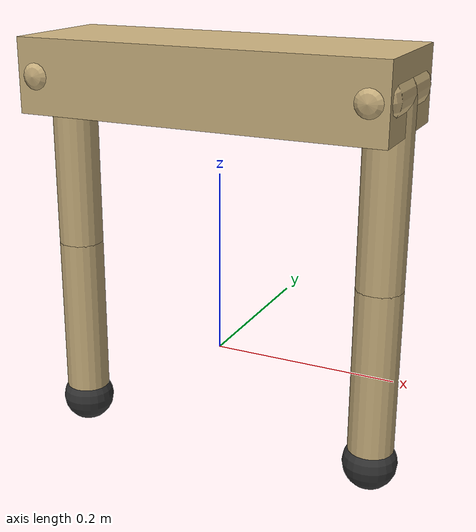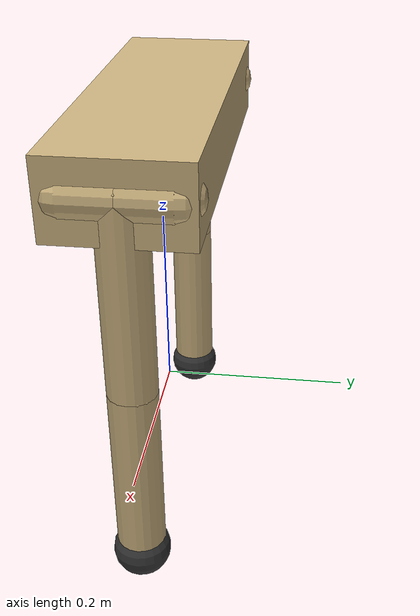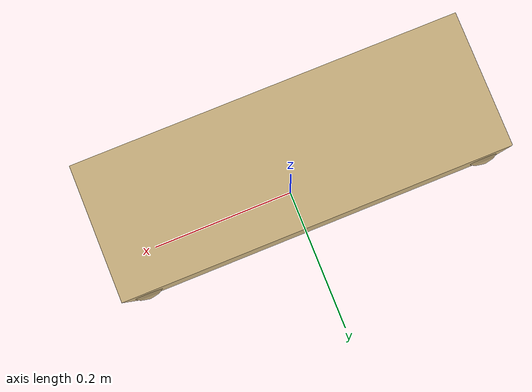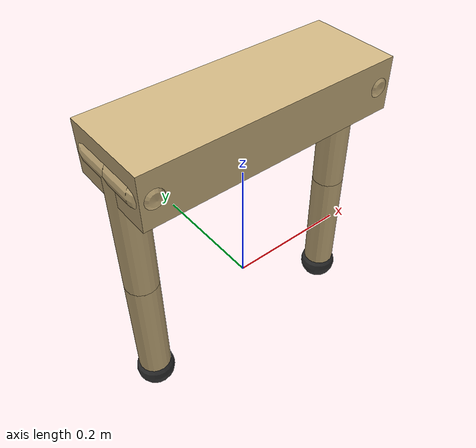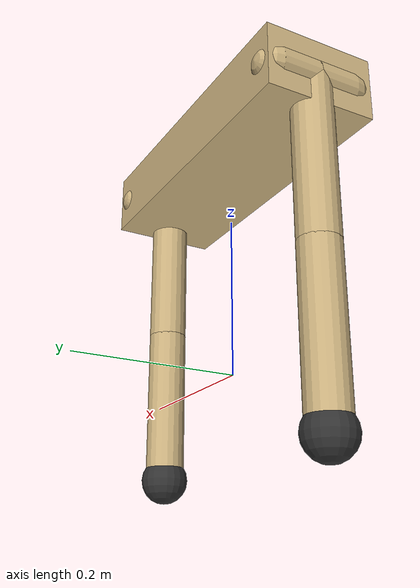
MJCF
<mujoco model="go2">
    <compiler angle="degree" coordinate="local" inertiafromgeom="auto"/>
    <option timestep="0.002" gravity="0 0 -9.81" integrator="RK4"/>

    <default>
        <joint limited="true" damping="0.2" armature="0.01" type="hinge"/>
        <geom type="capsule" size="0.025" friction="1.0 0.1 0.1" condim="3"
              solref="0.01 1" solimp="0.95 0.99 0.001" rgba="0.8 0.7 0.5 1.0"/>
        <motor ctrllimited="true" ctrlrange="-1 1"/>
    </default>

    <worldbody>
        <!-- Torso -->
        <body name="torso" pos="0 0 0.3">
            <geom type="box" size="0.2 0.07 0.04" mass="5.0"/>

            <!-- Front Right Leg -->
            <body name="FR_hip" pos="0.18 -0.05 0">
                <joint name="FR_hip_joint" axis="1 0 0" range="-45 45"/>
                <geom fromto="0 0 0 0 0.05 0" size="0.025"/>
                <body name="FR_thigh" pos="0 0.05 0">
                    <joint name="FR_thigh_joint" axis="0 1 0" range="-90 90"/>
                    <geom fromto="0 0 0 0 0 -0.2" size="0.025"/>
                    <body name="FR_calf" pos="0 0 -0.2">
                        <joint name="FR_calf_joint" axis="0 1 0" range="-150 -30"/>
                        <geom fromto="0 0 0 0 0 -0.2" size="0.025"/>
                        <geom type="sphere" size="0.03" pos="0 0 -0.2" rgba="0.2 0.2 0.2 1.0"/>
                    </body>
                </body>
            </body>

            <!-- Front Left Leg -->
            <body name="FL_hip" pos="0.18 0.05 0">
                <joint name="FL_hip_joint" axis="1 0 0" range="-45 45"/>
                <geom fromto="0 0 0 0 -0.05 0" size="0.025"/>
                <body name="FL_thigh" pos="0 -0.05 0">
                    <joint name="FL_thigh_joint" axis="0 1 0" range="-90 90"/>
                    <geom fromto="0 0 0 0 0 -0.2" size="0.025"/>
                    <body name="FL_calf" pos="0 0 -0.2">
                        <joint name="FL_calf_joint" axis="0 1 0" range="-150 -30"/>
                        <geom fromto="0 0 0 0 0 -0.2" size="0.025"/>
                        <geom type="sphere" size="0.03" pos="0 0 -0.2" rgba="0.2 0.2 0.2 1.0"/>
                    </body>
                </body>
            </body>

            <!-- Rear Right Leg -->
            <body name="RR_hip" pos="-0.18 -0.05 0">
                <joint name="RR_hip_joint" axis="1 0 0" range="-45 45"/>
                <geom fromto="0 0 0 0 0.05 0" size="0.025"/>
                <body name="RR_thigh" pos="0 0.05 0">
                    <joint name="RR_thigh_joint" axis="0 1 0" range="-90 90"/>
                    <geom fromto="0 0 0 0 0 -0.2" size="0.025"/>
                    <body name="RR_calf" pos="0 0 -0.2">
                        <joint name="RR_calf_joint" axis="0 1 0" range="-150 -30"/>
                        <geom fromto="0 0 0 0 0 -0.2" size="0.025"/>
                        <geom type="sphere" size="0.03" pos="0 0 -0.2" rgba="0.2 0.2 0.2 1.0"/>
                    </body>
                </body>
            </body>

            <!-- Rear Left Leg -->
            <body name="RL_hip" pos="-0.18 0.05 0">
                <joint name="RL_hip_joint" axis="1 0 0" range="-45 45"/>
                <geom fromto="0 0 0 0 -0.05 0" size="0.025"/>
                <body name="RL_thigh" pos="0 -0.05 0">
                    <joint name="RL_thigh_joint" axis="0 1 0" range="-90 90"/>
                    <geom fromto="0 0 0 0 0 -0.2" size="0.025"/>
                    <body name="RL_calf" pos="0 0 -0.2">
                        <joint name="RL_calf_joint" axis="0 1 0" range="-150 -30"/>
                        <geom fromto="0 0 0 0 0 -0.2" size="0.025"/>
                        <geom type="sphere" size="0.03" pos="0 0 -0.2" rgba="0.2 0.2 0.2 1.0"/>
                    </body>
                </body>
            </body>

        </body>
    </worldbody>

    <actuator>
        <motor joint="FR_hip_joint" gear="20"/>
        <motor joint="FR_thigh_joint" gear="30"/>
        <motor joint="FR_calf_joint" gear="30"/>

        <motor joint="FL_hip_joint" gear="20"/>
        <motor joint="FL_thigh_joint" gear="30"/>
        <motor joint="FL_calf_joint" gear="30"/>

        <motor joint="RR_hip_joint" gear="20"/>
        <motor joint="RR_thigh_joint" gear="30"/>
        <motor joint="RR_calf_joint" gear="30"/>

        <motor joint="RL_hip_joint" gear="20"/>
        <motor joint="RL_thigh_joint" gear="30"/>
        <motor joint="RL_calf_joint" gear="30"/>
    </actuator>

</mujoco>
